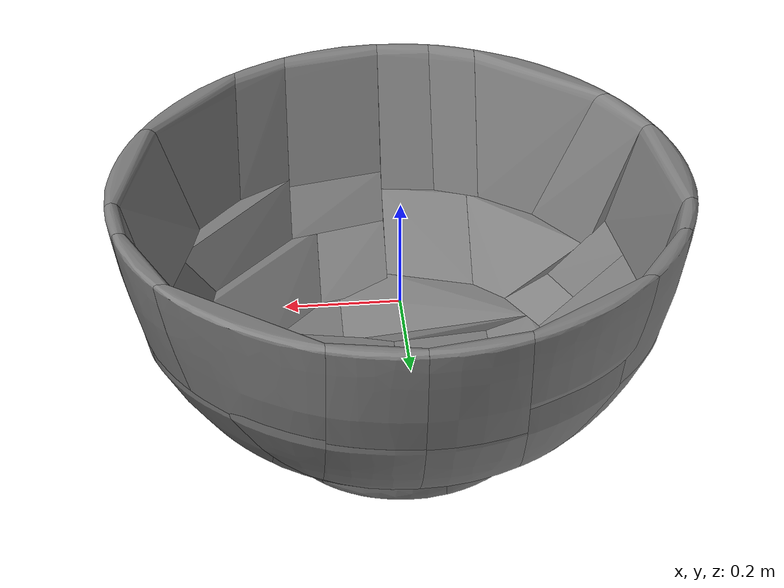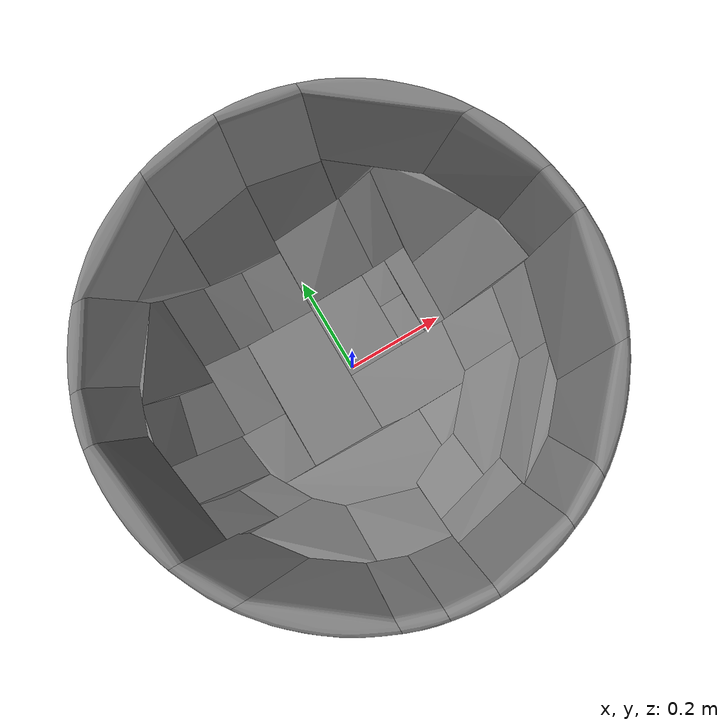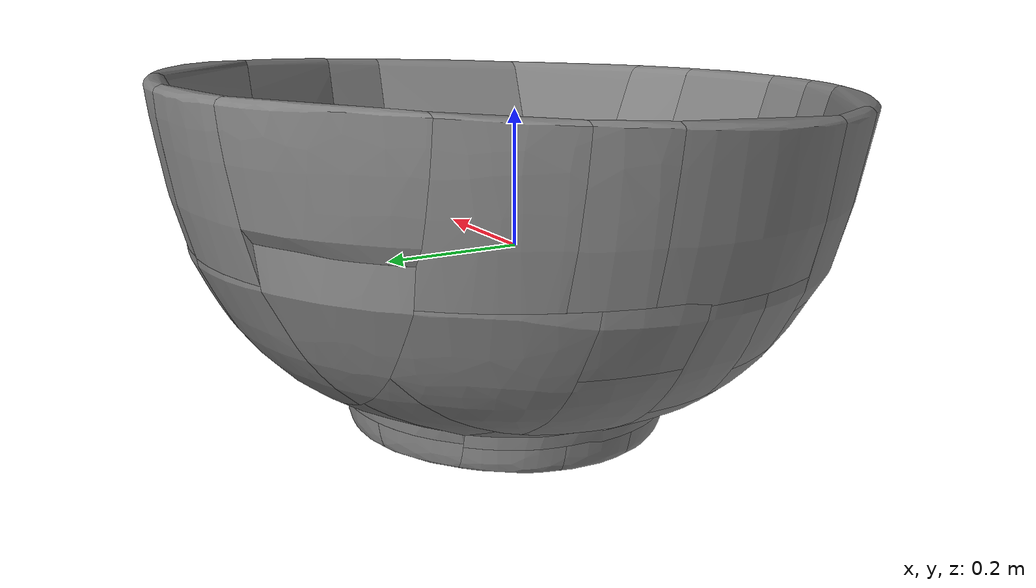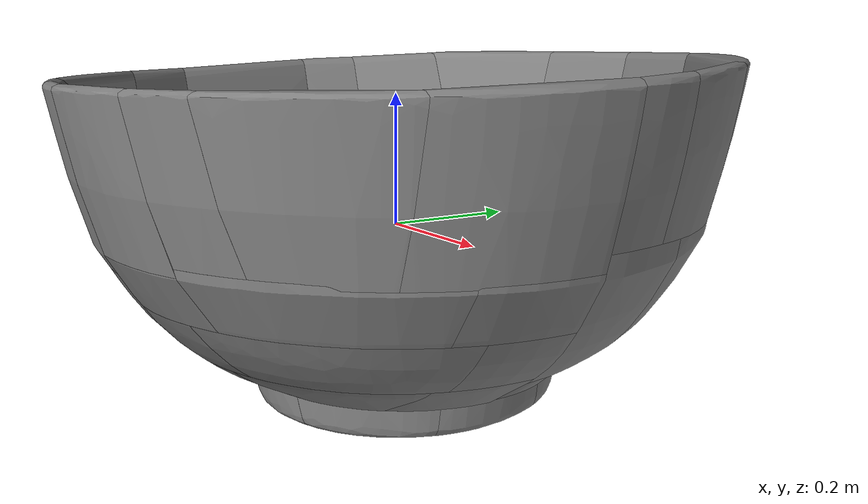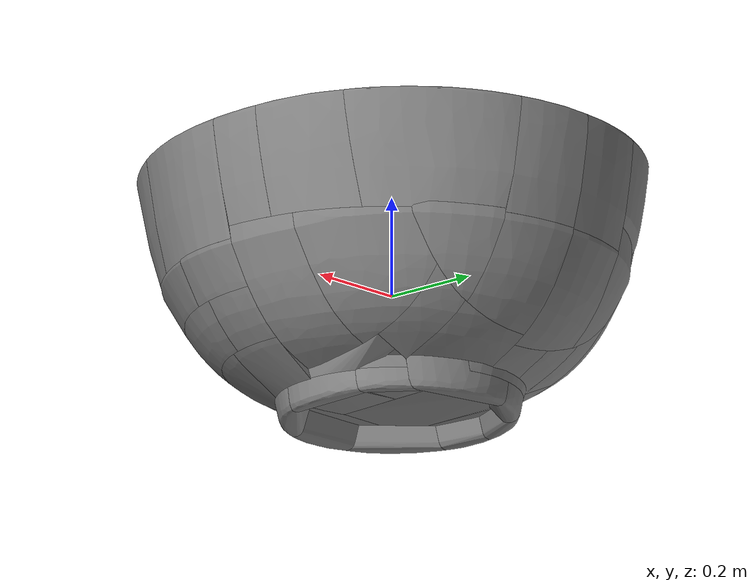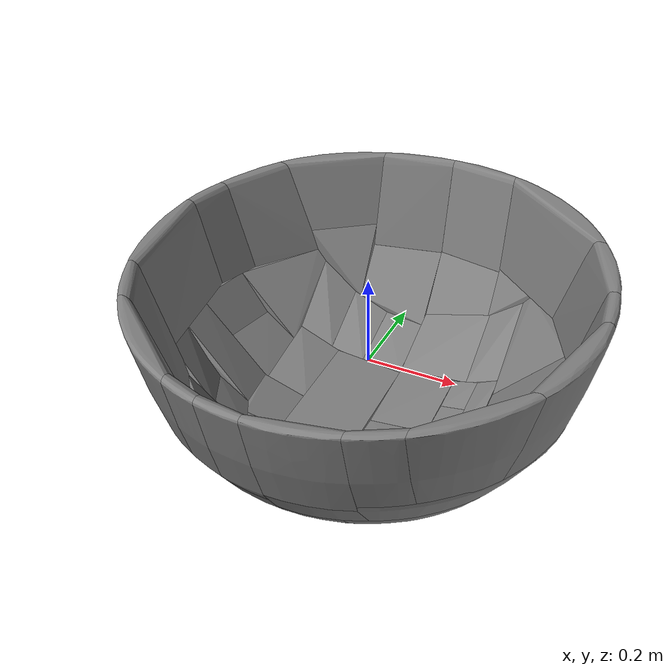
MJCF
<?xml version="1.0" ?>
<mujoco model="002_bowl_8">
  <asset>
    <mesh name="002_bowl_8_mesh" file="002_bowl_8.stl" scale="1.0 1.0 1.0"/>
    <mesh name="002_bowl_8_part_0" file="decomposed/002_bowl_8_decomposed_0.stl" scale="1.0 1.0 1.0"/>
    <mesh name="002_bowl_8_part_1" file="decomposed/002_bowl_8_decomposed_1.stl" scale="1.0 1.0 1.0"/>
    <mesh name="002_bowl_8_part_2" file="decomposed/002_bowl_8_decomposed_2.stl" scale="1.0 1.0 1.0"/>
    <mesh name="002_bowl_8_part_3" file="decomposed/002_bowl_8_decomposed_3.stl" scale="1.0 1.0 1.0"/>
    <mesh name="002_bowl_8_part_4" file="decomposed/002_bowl_8_decomposed_4.stl" scale="1.0 1.0 1.0"/>
    <mesh name="002_bowl_8_part_5" file="decomposed/002_bowl_8_decomposed_5.stl" scale="1.0 1.0 1.0"/>
    <mesh name="002_bowl_8_part_6" file="decomposed/002_bowl_8_decomposed_6.stl" scale="1.0 1.0 1.0"/>
    <mesh name="002_bowl_8_part_7" file="decomposed/002_bowl_8_decomposed_7.stl" scale="1.0 1.0 1.0"/>
    <mesh name="002_bowl_8_part_8" file="decomposed/002_bowl_8_decomposed_8.stl" scale="1.0 1.0 1.0"/>
    <mesh name="002_bowl_8_part_9" file="decomposed/002_bowl_8_decomposed_9.stl" scale="1.0 1.0 1.0"/>
    <mesh name="002_bowl_8_part_10" file="decomposed/002_bowl_8_decomposed_10.stl" scale="1.0 1.0 1.0"/>
    <mesh name="002_bowl_8_part_11" file="decomposed/002_bowl_8_decomposed_11.stl" scale="1.0 1.0 1.0"/>
    <mesh name="002_bowl_8_part_12" file="decomposed/002_bowl_8_decomposed_12.stl" scale="1.0 1.0 1.0"/>
    <mesh name="002_bowl_8_part_13" file="decomposed/002_bowl_8_decomposed_13.stl" scale="1.0 1.0 1.0"/>
    <mesh name="002_bowl_8_part_14" file="decomposed/002_bowl_8_decomposed_14.stl" scale="1.0 1.0 1.0"/>
    <mesh name="002_bowl_8_part_15" file="decomposed/002_bowl_8_decomposed_15.stl" scale="1.0 1.0 1.0"/>
    <mesh name="002_bowl_8_part_16" file="decomposed/002_bowl_8_decomposed_16.stl" scale="1.0 1.0 1.0"/>
    <mesh name="002_bowl_8_part_17" file="decomposed/002_bowl_8_decomposed_17.stl" scale="1.0 1.0 1.0"/>
    <mesh name="002_bowl_8_part_18" file="decomposed/002_bowl_8_decomposed_18.stl" scale="1.0 1.0 1.0"/>
    <mesh name="002_bowl_8_part_19" file="decomposed/002_bowl_8_decomposed_19.stl" scale="1.0 1.0 1.0"/>
    <mesh name="002_bowl_8_part_20" file="decomposed/002_bowl_8_decomposed_20.stl" scale="1.0 1.0 1.0"/>
    <mesh name="002_bowl_8_part_21" file="decomposed/002_bowl_8_decomposed_21.stl" scale="1.0 1.0 1.0"/>
    <mesh name="002_bowl_8_part_22" file="decomposed/002_bowl_8_decomposed_22.stl" scale="1.0 1.0 1.0"/>
    <mesh name="002_bowl_8_part_23" file="decomposed/002_bowl_8_decomposed_23.stl" scale="1.0 1.0 1.0"/>
    <mesh name="002_bowl_8_part_24" file="decomposed/002_bowl_8_decomposed_24.stl" scale="1.0 1.0 1.0"/>
    <mesh name="002_bowl_8_part_25" file="decomposed/002_bowl_8_decomposed_25.stl" scale="1.0 1.0 1.0"/>
    <mesh name="002_bowl_8_part_26" file="decomposed/002_bowl_8_decomposed_26.stl" scale="1.0 1.0 1.0"/>
    <mesh name="002_bowl_8_part_27" file="decomposed/002_bowl_8_decomposed_27.stl" scale="1.0 1.0 1.0"/>
    <mesh name="002_bowl_8_part_28" file="decomposed/002_bowl_8_decomposed_28.stl" scale="1.0 1.0 1.0"/>
    <mesh name="002_bowl_8_part_29" file="decomposed/002_bowl_8_decomposed_29.stl" scale="1.0 1.0 1.0"/>
    <mesh name="002_bowl_8_part_30" file="decomposed/002_bowl_8_decomposed_30.stl" scale="1.0 1.0 1.0"/>
    <mesh name="002_bowl_8_part_31" file="decomposed/002_bowl_8_decomposed_31.stl" scale="1.0 1.0 1.0"/>
    <mesh name="002_bowl_8_part_32" file="decomposed/002_bowl_8_decomposed_32.stl" scale="1.0 1.0 1.0"/>
    <mesh name="002_bowl_8_part_33" file="decomposed/002_bowl_8_decomposed_33.stl" scale="1.0 1.0 1.0"/>
    <mesh name="002_bowl_8_part_34" file="decomposed/002_bowl_8_decomposed_34.stl" scale="1.0 1.0 1.0"/>
    <mesh name="002_bowl_8_part_35" file="decomposed/002_bowl_8_decomposed_35.stl" scale="1.0 1.0 1.0"/>
    <mesh name="002_bowl_8_part_36" file="decomposed/002_bowl_8_decomposed_36.stl" scale="1.0 1.0 1.0"/>
    <mesh name="002_bowl_8_part_37" file="decomposed/002_bowl_8_decomposed_37.stl" scale="1.0 1.0 1.0"/>
    <mesh name="002_bowl_8_part_38" file="decomposed/002_bowl_8_decomposed_38.stl" scale="1.0 1.0 1.0"/>
    <mesh name="002_bowl_8_part_39" file="decomposed/002_bowl_8_decomposed_39.stl" scale="1.0 1.0 1.0"/>
    <mesh name="002_bowl_8_part_40" file="decomposed/002_bowl_8_decomposed_40.stl" scale="1.0 1.0 1.0"/>
    <mesh name="002_bowl_8_part_41" file="decomposed/002_bowl_8_decomposed_41.stl" scale="1.0 1.0 1.0"/>
    <mesh name="002_bowl_8_part_42" file="decomposed/002_bowl_8_decomposed_42.stl" scale="1.0 1.0 1.0"/>
    <mesh name="002_bowl_8_part_43" file="decomposed/002_bowl_8_decomposed_43.stl" scale="1.0 1.0 1.0"/>
    <mesh name="002_bowl_8_part_44" file="decomposed/002_bowl_8_decomposed_44.stl" scale="1.0 1.0 1.0"/>
    <mesh name="002_bowl_8_part_45" file="decomposed/002_bowl_8_decomposed_45.stl" scale="1.0 1.0 1.0"/>
    <mesh name="002_bowl_8_part_46" file="decomposed/002_bowl_8_decomposed_46.stl" scale="1.0 1.0 1.0"/>
    <mesh name="002_bowl_8_part_47" file="decomposed/002_bowl_8_decomposed_47.stl" scale="1.0 1.0 1.0"/>
    <mesh name="002_bowl_8_part_48" file="decomposed/002_bowl_8_decomposed_48.stl" scale="1.0 1.0 1.0"/>
    <mesh name="002_bowl_8_part_49" file="decomposed/002_bowl_8_decomposed_49.stl" scale="1.0 1.0 1.0"/>
    <mesh name="002_bowl_8_part_50" file="decomposed/002_bowl_8_decomposed_50.stl" scale="1.0 1.0 1.0"/>
    <mesh name="002_bowl_8_part_51" file="decomposed/002_bowl_8_decomposed_51.stl" scale="1.0 1.0 1.0"/>
    <mesh name="002_bowl_8_part_52" file="decomposed/002_bowl_8_decomposed_52.stl" scale="1.0 1.0 1.0"/>
    <mesh name="002_bowl_8_part_53" file="decomposed/002_bowl_8_decomposed_53.stl" scale="1.0 1.0 1.0"/>
    <mesh name="002_bowl_8_part_54" file="decomposed/002_bowl_8_decomposed_54.stl" scale="1.0 1.0 1.0"/>
    <mesh name="002_bowl_8_part_55" file="decomposed/002_bowl_8_decomposed_55.stl" scale="1.0 1.0 1.0"/>
    <mesh name="002_bowl_8_part_56" file="decomposed/002_bowl_8_decomposed_56.stl" scale="1.0 1.0 1.0"/>
    <mesh name="002_bowl_8_part_57" file="decomposed/002_bowl_8_decomposed_57.stl" scale="1.0 1.0 1.0"/>
    <mesh name="002_bowl_8_part_58" file="decomposed/002_bowl_8_decomposed_58.stl" scale="1.0 1.0 1.0"/>
    <mesh name="002_bowl_8_part_59" file="decomposed/002_bowl_8_decomposed_59.stl" scale="1.0 1.0 1.0"/>
    <mesh name="002_bowl_8_part_60" file="decomposed/002_bowl_8_decomposed_60.stl" scale="1.0 1.0 1.0"/>
    <mesh name="002_bowl_8_part_61" file="decomposed/002_bowl_8_decomposed_61.stl" scale="1.0 1.0 1.0"/>
    <mesh name="002_bowl_8_part_62" file="decomposed/002_bowl_8_decomposed_62.stl" scale="1.0 1.0 1.0"/>
    <mesh name="002_bowl_8_part_63" file="decomposed/002_bowl_8_decomposed_63.stl" scale="1.0 1.0 1.0"/>
  </asset>
  <worldbody>
    <body name="002_bowl_8">
      <geom name="002_bowl_8_geom_0" type="mesh" mesh="002_bowl_8_part_0"/>
      <geom name="002_bowl_8_geom_1" type="mesh" mesh="002_bowl_8_part_1"/>
      <geom name="002_bowl_8_geom_2" type="mesh" mesh="002_bowl_8_part_2"/>
      <geom name="002_bowl_8_geom_3" type="mesh" mesh="002_bowl_8_part_3"/>
      <geom name="002_bowl_8_geom_4" type="mesh" mesh="002_bowl_8_part_4"/>
      <geom name="002_bowl_8_geom_5" type="mesh" mesh="002_bowl_8_part_5"/>
      <geom name="002_bowl_8_geom_6" type="mesh" mesh="002_bowl_8_part_6"/>
      <geom name="002_bowl_8_geom_7" type="mesh" mesh="002_bowl_8_part_7"/>
      <geom name="002_bowl_8_geom_8" type="mesh" mesh="002_bowl_8_part_8"/>
      <geom name="002_bowl_8_geom_9" type="mesh" mesh="002_bowl_8_part_9"/>
      <geom name="002_bowl_8_geom_10" type="mesh" mesh="002_bowl_8_part_10"/>
      <geom name="002_bowl_8_geom_11" type="mesh" mesh="002_bowl_8_part_11"/>
      <geom name="002_bowl_8_geom_12" type="mesh" mesh="002_bowl_8_part_12"/>
      <geom name="002_bowl_8_geom_13" type="mesh" mesh="002_bowl_8_part_13"/>
      <geom name="002_bowl_8_geom_14" type="mesh" mesh="002_bowl_8_part_14"/>
      <geom name="002_bowl_8_geom_15" type="mesh" mesh="002_bowl_8_part_15"/>
      <geom name="002_bowl_8_geom_16" type="mesh" mesh="002_bowl_8_part_16"/>
      <geom name="002_bowl_8_geom_17" type="mesh" mesh="002_bowl_8_part_17"/>
      <geom name="002_bowl_8_geom_18" type="mesh" mesh="002_bowl_8_part_18"/>
      <geom name="002_bowl_8_geom_19" type="mesh" mesh="002_bowl_8_part_19"/>
      <geom name="002_bowl_8_geom_20" type="mesh" mesh="002_bowl_8_part_20"/>
      <geom name="002_bowl_8_geom_21" type="mesh" mesh="002_bowl_8_part_21"/>
      <geom name="002_bowl_8_geom_22" type="mesh" mesh="002_bowl_8_part_22"/>
      <geom name="002_bowl_8_geom_23" type="mesh" mesh="002_bowl_8_part_23"/>
      <geom name="002_bowl_8_geom_24" type="mesh" mesh="002_bowl_8_part_24"/>
      <geom name="002_bowl_8_geom_25" type="mesh" mesh="002_bowl_8_part_25"/>
      <geom name="002_bowl_8_geom_26" type="mesh" mesh="002_bowl_8_part_26"/>
      <geom name="002_bowl_8_geom_27" type="mesh" mesh="002_bowl_8_part_27"/>
      <geom name="002_bowl_8_geom_28" type="mesh" mesh="002_bowl_8_part_28"/>
      <geom name="002_bowl_8_geom_29" type="mesh" mesh="002_bowl_8_part_29"/>
      <geom name="002_bowl_8_geom_30" type="mesh" mesh="002_bowl_8_part_30"/>
      <geom name="002_bowl_8_geom_31" type="mesh" mesh="002_bowl_8_part_31"/>
      <geom name="002_bowl_8_geom_32" type="mesh" mesh="002_bowl_8_part_32"/>
      <geom name="002_bowl_8_geom_33" type="mesh" mesh="002_bowl_8_part_33"/>
      <geom name="002_bowl_8_geom_34" type="mesh" mesh="002_bowl_8_part_34"/>
      <geom name="002_bowl_8_geom_35" type="mesh" mesh="002_bowl_8_part_35"/>
      <geom name="002_bowl_8_geom_36" type="mesh" mesh="002_bowl_8_part_36"/>
      <geom name="002_bowl_8_geom_37" type="mesh" mesh="002_bowl_8_part_37"/>
      <geom name="002_bowl_8_geom_38" type="mesh" mesh="002_bowl_8_part_38"/>
      <geom name="002_bowl_8_geom_39" type="mesh" mesh="002_bowl_8_part_39"/>
      <geom name="002_bowl_8_geom_40" type="mesh" mesh="002_bowl_8_part_40"/>
      <geom name="002_bowl_8_geom_41" type="mesh" mesh="002_bowl_8_part_41"/>
      <geom name="002_bowl_8_geom_42" type="mesh" mesh="002_bowl_8_part_42"/>
      <geom name="002_bowl_8_geom_43" type="mesh" mesh="002_bowl_8_part_43"/>
      <geom name="002_bowl_8_geom_44" type="mesh" mesh="002_bowl_8_part_44"/>
      <geom name="002_bowl_8_geom_45" type="mesh" mesh="002_bowl_8_part_45"/>
      <geom name="002_bowl_8_geom_46" type="mesh" mesh="002_bowl_8_part_46"/>
      <geom name="002_bowl_8_geom_47" type="mesh" mesh="002_bowl_8_part_47"/>
      <geom name="002_bowl_8_geom_48" type="mesh" mesh="002_bowl_8_part_48"/>
      <geom name="002_bowl_8_geom_49" type="mesh" mesh="002_bowl_8_part_49"/>
      <geom name="002_bowl_8_geom_50" type="mesh" mesh="002_bowl_8_part_50"/>
      <geom name="002_bowl_8_geom_51" type="mesh" mesh="002_bowl_8_part_51"/>
      <geom name="002_bowl_8_geom_52" type="mesh" mesh="002_bowl_8_part_52"/>
      <geom name="002_bowl_8_geom_53" type="mesh" mesh="002_bowl_8_part_53"/>
      <geom name="002_bowl_8_geom_54" type="mesh" mesh="002_bowl_8_part_54"/>
      <geom name="002_bowl_8_geom_55" type="mesh" mesh="002_bowl_8_part_55"/>
      <geom name="002_bowl_8_geom_56" type="mesh" mesh="002_bowl_8_part_56"/>
      <geom name="002_bowl_8_geom_57" type="mesh" mesh="002_bowl_8_part_57"/>
      <geom name="002_bowl_8_geom_58" type="mesh" mesh="002_bowl_8_part_58"/>
      <geom name="002_bowl_8_geom_59" type="mesh" mesh="002_bowl_8_part_59"/>
      <geom name="002_bowl_8_geom_60" type="mesh" mesh="002_bowl_8_part_60"/>
      <geom name="002_bowl_8_geom_61" type="mesh" mesh="002_bowl_8_part_61"/>
      <geom name="002_bowl_8_geom_62" type="mesh" mesh="002_bowl_8_part_62"/>
      <geom name="002_bowl_8_geom_63" type="mesh" mesh="002_bowl_8_part_63"/>
    </body>
  </worldbody>
</mujoco>
